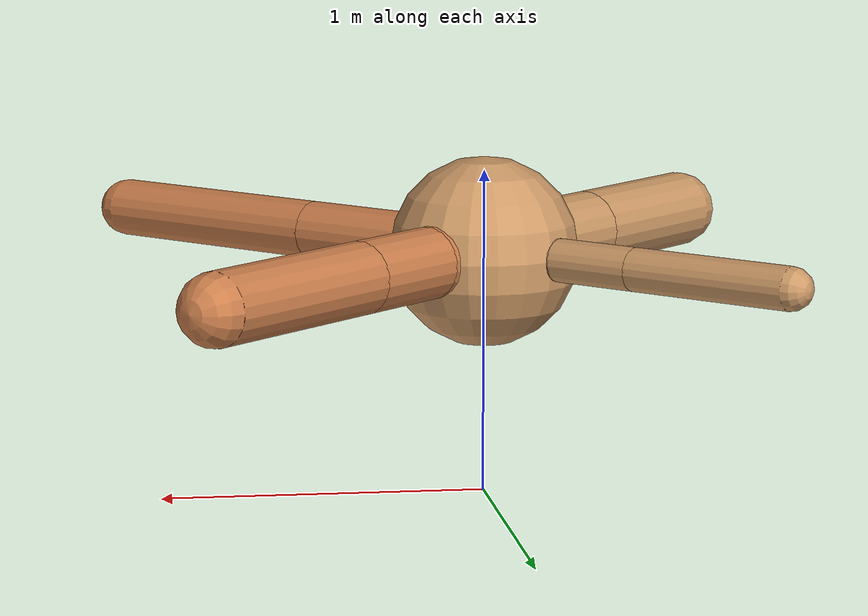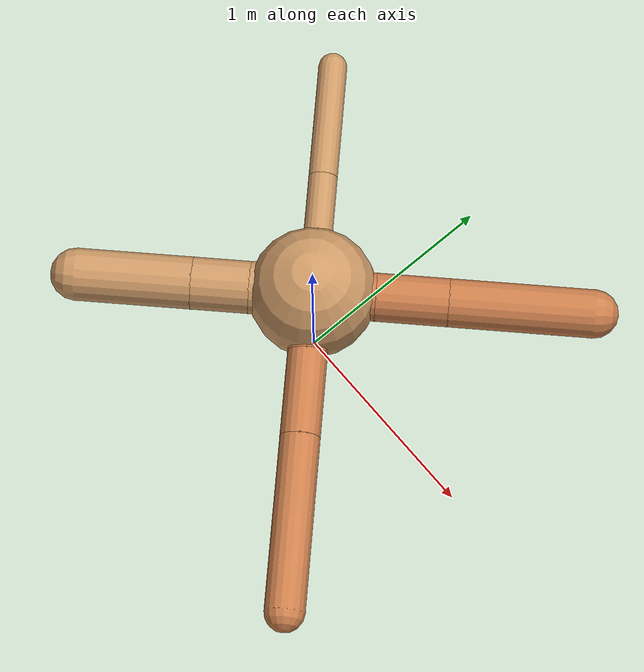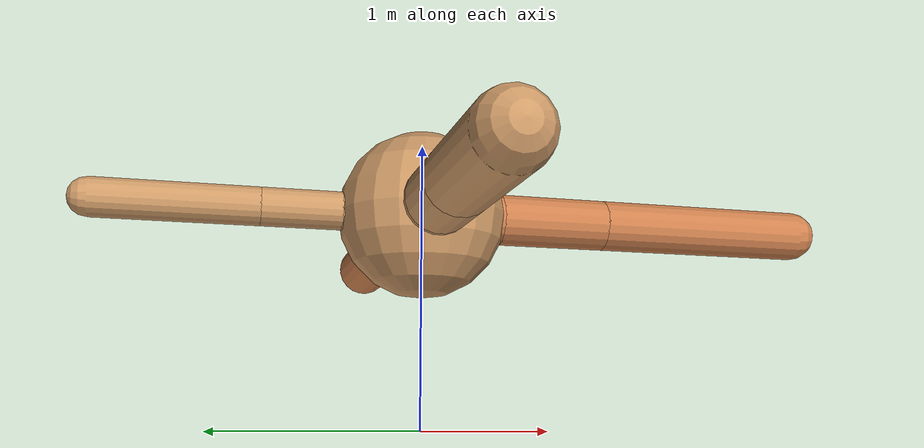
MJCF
<?xml version="1.0" ?>
<mujoco model="ant">

	<compiler angle="degree" coordinate="local" inertiafromgeom="true"/>

	<option integrator="RK4" timestep="0.01"/>

	<custom>

		<numeric data="0.0 0.0 0.55 1.0 0.0 0.0 0.0 0.0 1.0 0.0 -1.0 0.0 -1.0 0.0 1.0" name="init_qpos"/>

	</custom>

	<default>

		<joint armature="1" damping="1" limited="true"/>

		<geom conaffinity="0" condim="3" density="5.0" friction="1.5 0.1 0.1" margin="0.01" rgba="0.8 0.6 0.4 1"/>

	</default>

	<worldbody>

		<body name="torso" pos="0 0 0.75">

			<geom name="torso_geom" pos="0 0 0" size="0.2924215131826207" type="sphere"/>

			<!--joint armature="0" damping="0" limited="false" margin="0.01" name="root" pos="0 0 0" type="free"/-->

			<body name="front_left_leg" pos="0 0 0">

				<geom fromto="0 0 0 0.2 0.2 0" name="aux_1_geom" size="0.11037290763181432" type="capsule" rgba=".8 .5 .3 1"/>

				<body name="aux_1" pos="0.2 0.2 0">

					<joint axis="0 0 1" name="hip_1" pos="0.0 0.0 0.0" range="-40 40" type="hinge"/>

					<geom fromto="0 0 0 0.2312424598362871 0.2312424598362871 0" name="left_leg_geom" size="0.11037290763181432" type="capsule" rgba=".8 .5 .3 1"/>

					<body pos="0.2312424598362871 0.2312424598362871 0" name="front_left_foot">

						<joint axis="-1 1 0" name="ankle_1" pos="0.0 0.0 0.0" range="30 100" type="hinge"/>

						<geom fromto="0 0 0 0.4624849196725742 0.4624849196725742 0" name="left_ankle_geom" size="0.11037290763181432" type="capsule" rgba=".8 .5 .3 1"/>

					</body>

				</body>

			</body>

			<body name="front_right_leg" pos="0 0 0">

				<geom fromto="0 0 0 -0.2 0.2 0" name="aux_2_geom" size="0.06630159218311564" type="capsule"/>

				<body name="aux_2" pos="-0.2 0.2 0">

					<joint axis="0 0 1" name="hip_2" pos="0.0 0.0 0.0" range="-40 40" type="hinge"/>

					<geom fromto="0 0 0 -0.19357069727654164 0.19357069727654164 0" name="right_leg_geom" size="0.06630159218311564" type="capsule"/>

					<body pos="-0.19357069727654164 0.19357069727654164 0" name="front_right_foot">

						<joint axis="1 1 0" name="ankle_2" pos="0.0 0.0 0.0" range="-100 -30" type="hinge"/>

						<geom fromto="0 0 0 -0.3871413945530833 0.3871413945530833 0" name="right_ankle_geom" size="0.06630159218311564" type="capsule"/>

					</body>

				</body>

			</body>

			<body name="left_back_leg" pos="0 0 0">

				<geom fromto="0 0 0 -0.2 -0.2 0" name="aux_3_geom" size="0.1195858871636022" type="capsule"/>

				<body name="aux_3" pos="-0.2 -0.2 0">

					<joint axis="0 0 1" name="hip_3" pos="0.0 0.0 0.0" range="-40 40" type="hinge"/>

					<geom fromto="0 0 0 -0.1847194010409642 -0.1847194010409642 0" name="back_leg_geom" size="0.1195858871636022" type="capsule"/>

					<body pos="-0.1847194010409642 -0.1847194010409642 0" name="left_back_foot">

						<joint axis="-1 1 0" name="ankle_3" pos="0.0 0.0 0.0" range="-100 -30" type="hinge"/>

						<geom fromto="0 0 0 -0.3694388020819284 -0.3694388020819284 0" name="third_ankle_geom" size="0.1195858871636022" type="capsule"/>

					</body>

				</body>

			</body>

			<body name="right_back_leg" pos="0 0 0">

				<geom fromto="0 0 0 0.2 -0.2 0" name="aux_4_geom" size="0.09061015765646462" type="capsule" rgba=".8 .5 .3 1"/>

				<body name="aux_4" pos="0.2 -0.2 0">

					<joint axis="0 0 1" name="hip_4" pos="0.0 0.0 0.0" range="-40 40" type="hinge"/>

					<geom fromto="0 0 0 0.2772003952128021 -0.2772003952128021 0" name="rightback_leg_geom" size="0.09061015765646462" type="capsule" rgba=".8 .5 .3 1"/>

					<body pos="0.2772003952128021 -0.2772003952128021 0" name="right_back_foot">

						<joint axis="1 1 0" name="ankle_4" pos="0.0 0.0 0.0" range="30 100" type="hinge"/>

						<geom fromto="0 0 0 0.5544007904256042 -0.5544007904256042 0" name="fourth_ankle_geom" size="0.09061015765646462" type="capsule" rgba=".8 .5 .3 1"/>

					</body>

				</body>

			</body>

		</body>

	</worldbody>

	<actuator>

		<motor ctrllimited="true" ctrlrange="-1.0 1.0" joint="hip_4" gear="150"/>

		<motor ctrllimited="true" ctrlrange="-1.0 1.0" joint="ankle_4" gear="150"/>

		<motor ctrllimited="true" ctrlrange="-1.0 1.0" joint="hip_1" gear="150"/>

		<motor ctrllimited="true" ctrlrange="-1.0 1.0" joint="ankle_1" gear="150"/>

		<motor ctrllimited="true" ctrlrange="-1.0 1.0" joint="hip_2" gear="150"/>

		<motor ctrllimited="true" ctrlrange="-1.0 1.0" joint="ankle_2" gear="150"/>

		<motor ctrllimited="true" ctrlrange="-1.0 1.0" joint="hip_3" gear="150"/>

		<motor ctrllimited="true" ctrlrange="-1.0 1.0" joint="ankle_3" gear="150"/>

	</actuator>

</mujoco>
